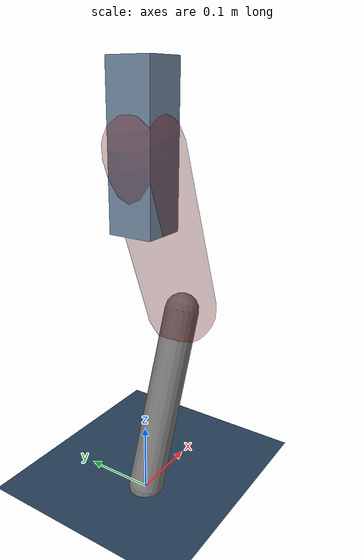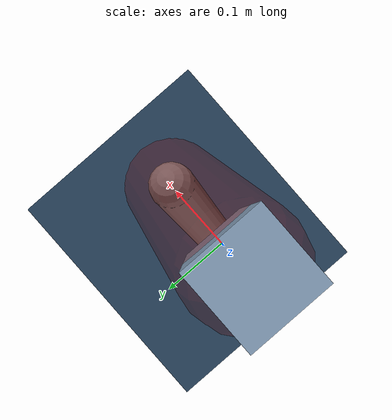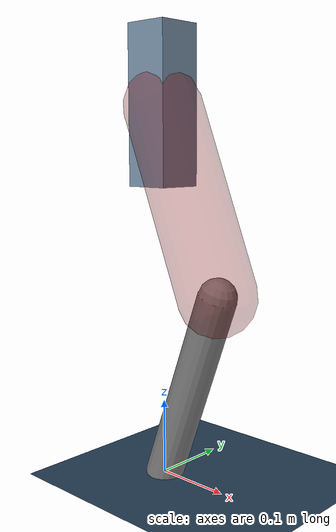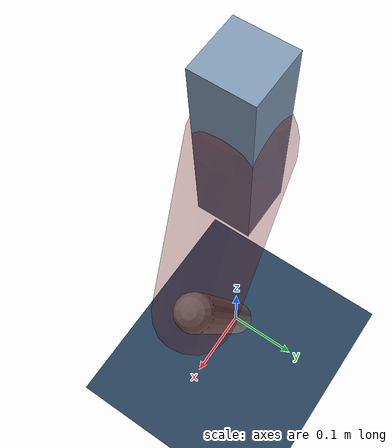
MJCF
<mujoco model="Hopper2D">
	<compiler inertiafromgeom="true" angle="radian" />
	<option timestep="0.001" integrator="implicit" cone="elliptic" solver="Newton" tolerance="1e-10" />

	<default>
		<geom contype="1" conaffinity="1" condim="3" friction="2 0.005 0.0001" solref="0.005 1" />
		<joint limited="true" damping="0.1" />
	</default>

	<asset>
		<texture name="skybox" type="skybox" builtin="gradient" rgb1=".4 .6 .8" rgb2="0 0 0" width="800" height="800" />
		<texture name="grid" type="2d" builtin="checker" rgb1=".1 .2 .3" rgb2=".2 .3 .4" width="300" height="300" mark="edge" markrgb=".2 .3 .4" />
		<material name="ground" texture="grid" texrepeat="1 1" texuniform="true" reflectance="0.1" />
		<material name="leg" rgba="0.5 0.6 0.7 1" />
	</asset>

	<worldbody>

		<geom name="floor" type="plane" size="5 5 0.25" material="ground" />

		<light directional="false" diffuse="0.8 0.8 0.8" specular="0.3 0.3 0.3" pos="0 0 2" dir="0 0 -1" />
		<light mode="targetbodycom" target="base" directional="false" diffuse="0.8 0.8 0.8" specular="0.3 0.3 0.3" pos="0 0 2" dir="0 0 -1" />

		<camera name="fixed" pos="0 -2 1" xyaxes="1 0 0 0 0 1" />
		<camera name="tracking" mode="trackcom" pos="0 -3 1" />

		<body name="root" pos="0 0 0.4844046507618782">
			<joint name="slide_x" type="slide" axis="1 0 0" range="-100 100" />
			<joint name="slide_z" type="slide" axis="0 0 1" range="0 10" />

			<body name="base" pos="0 0 0">
				<geom name="torso" type="box" size="0.03 0.03 0.1" mass="2.359" material="leg" />

				<body name="link1" pos="0 0 0" euler="0 1.1928928780477837 0">
					<joint type="hinge" axis="0 -1 0" pos="0 0 0" name="hinge1" limited="true" range="-3.14 3.14" stiffness="0" damping="0.1" />
					<geom name="thigh" type="capsule" fromto="0 0 0 0.25005206954591397 0 0" size="0.05" rgba="0.5 0 0 0.3" mass="0.8565353808193764" />

					<body name="link2" pos="0.25005206954591397 0 0" euler="0 0.7288716366274289 0">
						<joint type="hinge" axis="0 -1 0" pos="0 0 0" name="hinge2" limited="true" range="-3.14 3.14" stiffness="0" damping="0.1" />
						<geom name="shank" type="capsule" fromto="0 0 0 0.2683550405779865 0 0" size="0.025" mass="0.45758403246238916" />

					</body>
				</body>
			</body>
		</body>
	</worldbody>

	<actuator>
		<motor name="torque1" joint="hinge1" ctrlrange="-53.75343897010332 53.75343897010332" ctrllimited="true" gear="1" />
		<motor name="torque2" joint="hinge2" ctrlrange="-121.48097720250983 121.48097720250983" ctrllimited="true" gear="1" />
	</actuator>
</mujoco>
